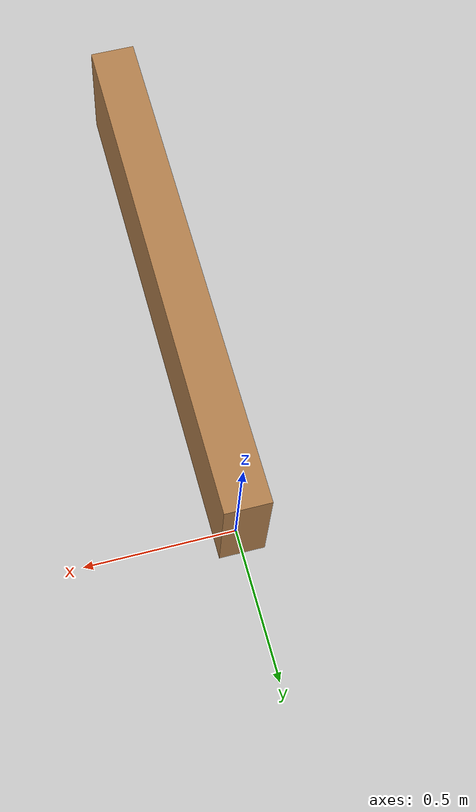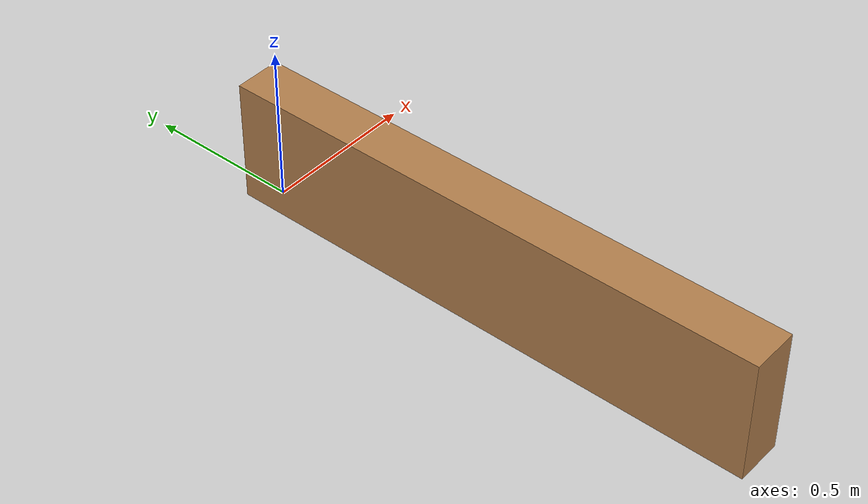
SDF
<?xml version='1.0'?>
<sdf version='1.7'>
  <model name='Wall_1_75m'>
    <pose>0 -0.8 0 0 -0 0</pose>
    <link name='Wall_2'>
      <collision name='Wall_2_Collision'>
        <geometry>
          <box>
            <size>1.75 0.15 0.4</size>
          </box>
        </geometry>
        <pose>0 0 0.2 0 -0 0</pose>
      </collision>
      <visual name='Wall_2_Visual'>
        <pose>0 0 0.2 0 -0 0</pose>
        <geometry>
          <box>
            <size>1.75 0.15 0.4</size>
          </box>
        </geometry>
        <material>
          <script>
            <uri>file://media/materials/scripts/gazebo.material</uri>
            <name>Gazebo/Wood</name>
          </script>
          <ambient>0.996078 0.47451 0.0196078 1</ambient>
        </material>
        <meta>
          <layer>0</layer>
        </meta>
      </visual>
      <pose>0 0 0 0 -0 -1.5708</pose>
    </link>
    <static>1</static>
  </model>
</sdf>
